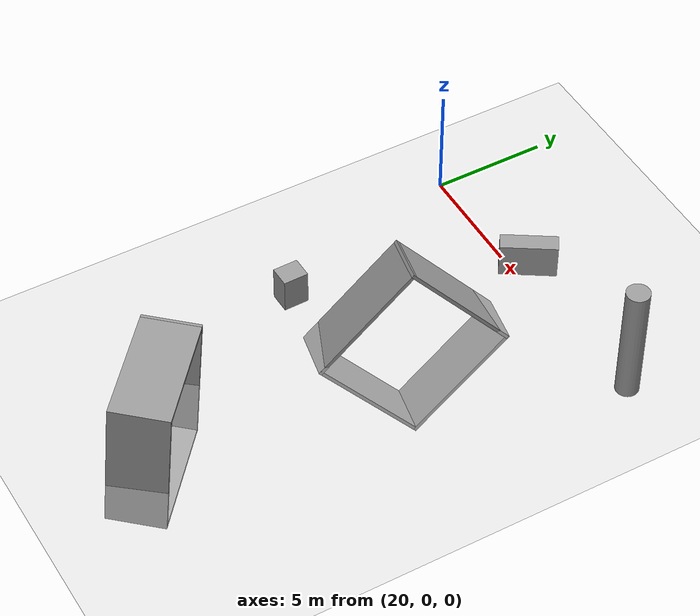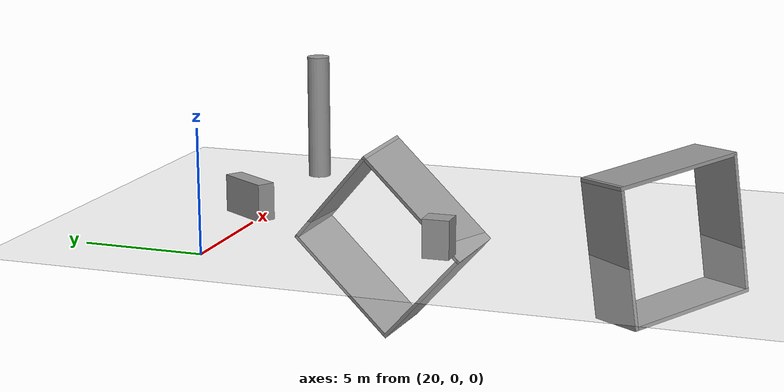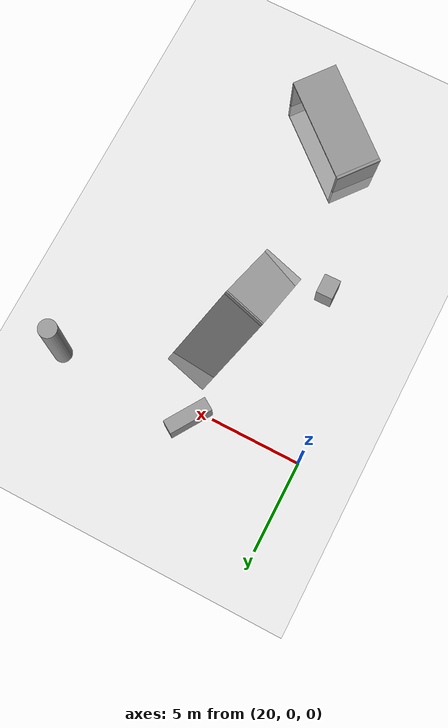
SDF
<sdf version="1.6">
 <world name="default">
  <model name="ground_plane">
   <static>1</static>
   <link name="link">
    <collision name="collision">
     <geometry><plane><normal>0 0 1</normal><size>100 100</size></plane></geometry>
     <surface><friction><ode><mu>100</mu><mu2>50</mu2></ode></friction></surface>
    </collision>
    <visual name="visual">
     <cast_shadows>0</cast_shadows>
     <geometry><plane><normal>0 0 1</normal><size>100 100</size></plane></geometry>
     <material>
      <script><uri>file://media/materials/scripts/gazebo.material</uri><name>Gazebo/Grey</name></script>
     </material>
    </visual>
   </link>
  </model>
  <model name="unit_box_clone_clone">
   <pose>26.0956 0.593964 0.788231 4e-06 -0 -0.569843</pose>
   <link name="link">
    <inertial>
     <mass>1</mass>
     <inertia>
      <ixx>0.166667</ixx>
      <ixy>0</ixy>
      <ixz>0</ixz>
      <iyy>0.166667</iyy>
      <iyz>0</iyz>
      <izz>0.166667</izz>
     </inertia>
    </inertial>
    <collision name="collision"><geometry><box><size>0.770315 2.44518 1.57647</size></box></geometry></collision>
    <visual name="visual">
     <geometry><box><size>0.770315 2.44518 1.57647</size></box></geometry>
     <material>
      <script><name>Gazebo/Grey</name><uri>file://media/materials/scripts/gazebo.material</uri></script>
     </material>
    </visual>
   </link>
  </model>
  <model name="unit_box_clone_clone_0">
   <pose>22.7246 -8.85656 0.788231 6e-06 -1e-06 0.019044</pose>
   <link name="link">
    <inertial>
     <mass>1</mass>
     <inertia>
      <ixx>0.166667</ixx>
      <ixy>0</ixy>
      <ixz>0</ixz>
      <iyy>0.166667</iyy>
      <iyz>0</iyz>
      <izz>0.166667</izz>
     </inertia>
    </inertial>
    <collision name="collision"><geometry><box><size>0.926366 1.10204 1.57647</size></box></geometry></collision>
    <visual name="visual">
     <geometry><box><size>0.926366 1.10204 1.57647</size></box></geometry>
     <material>
      <script><name>Gazebo/Grey</name><uri>file://media/materials/scripts/gazebo.material</uri></script>
     </material>
    </visual>
   </link>
  </model>
  <model name="vRoom_clone_3_clone_clone_9_clone_0">
   <link name="Wall_0">
    <pose>-2.8 -0 -1e-06 -0 -0 -1.5708</pose>
    <velocity_decay><linear>0</linear><angular>0</angular></velocity_decay>
    <visual name="Wall_0_Visual">
     <pose>0 0 1.25 0 -0 0</pose>
     <geometry><box><size>5.75 0.15 2.5</size></box></geometry>
     <material>
      <script><uri>file://media/materials/scripts/gazebo.material</uri><name>Gazebo/Grey</name></script>
      <ambient>1 1 1 1</ambient>
     </material>
    </visual>
    <collision name="Wall_0_Collision">
     <pose>0 0 1.25 0 -0 0</pose>
     <geometry><box><size>5.75 0.15 2.5</size></box></geometry>
     <surface>
      <friction>
       <ode><mu>1</mu><mu2>1</mu2><fdir1>0 0 0</fdir1><slip1>0</slip1><slip2>0</slip2></ode>
       <torsional>
        <coefficient>1</coefficient>
        <patch_radius>0</patch_radius>
        <surface_radius>0</surface_radius>
        <use_patch_radius>1</use_patch_radius>
        <ode><slip>0</slip></ode>
       </torsional>
      </friction>
      <bounce><restitution_coefficient>0</restitution_coefficient><threshold>1e+06</threshold></bounce>
      <contact>
       <collide_without_contact>0</collide_without_contact>
       <collide_without_contact_bitmask>1</collide_without_contact_bitmask>
       <collide_bitmask>1</collide_bitmask>
       <ode>
        <soft_cfm>0</soft_cfm>
        <soft_erp>0.2</soft_erp>
        <kp>1e+13</kp>
        <kd>1</kd>
        <max_vel>0.01</max_vel>
        <min_depth>0</min_depth>
       </ode>
       <bullet>
        <split_impulse>1</split_impulse>
        <split_impulse_penetration_threshold>-0.01</split_impulse_penetration_threshold>
        <soft_cfm>0</soft_cfm>
        <soft_erp>0.2</soft_erp>
        <kp>1e+13</kp>
        <kd>1</kd>
       </bullet>
      </contact>
     </surface>
    </collision>
   </link>
   <link name="Wall_1">
    <pose>2e-06 -2.8 2e-06 0 -0 0</pose>
    <velocity_decay><linear>0</linear><angular>0</angular></velocity_decay>
    <visual name="Wall_1_Visual">
     <pose>0 0 1.25 0 -0 0</pose>
     <geometry><box><size>5.75 0.15 2.5</size></box></geometry>
     <material>
      <script><uri>file://media/materials/scripts/gazebo.material</uri><name>Gazebo/Grey</name></script>
      <ambient>1 1 1 1</ambient>
     </material>
    </visual>
    <collision name="Wall_1_Collision">
     <pose>0 0 1.25 0 -0 0</pose>
     <geometry><box><size>5.75 0.15 2.5</size></box></geometry>
     <surface>
      <friction>
       <ode><mu>1</mu><mu2>1</mu2><fdir1>0 0 0</fdir1><slip1>0</slip1><slip2>0</slip2></ode>
       <torsional>
        <coefficient>1</coefficient>
        <patch_radius>0</patch_radius>
        <surface_radius>0</surface_radius>
        <use_patch_radius>1</use_patch_radius>
        <ode><slip>0</slip></ode>
       </torsional>
      </friction>
      <bounce><restitution_coefficient>0</restitution_coefficient><threshold>1e+06</threshold></bounce>
      <contact>
       <collide_without_contact>0</collide_without_contact>
       <collide_without_contact_bitmask>1</collide_without_contact_bitmask>
       <collide_bitmask>1</collide_bitmask>
       <ode>
        <soft_cfm>0</soft_cfm>
        <soft_erp>0.2</soft_erp>
        <kp>1e+13</kp>
        <kd>1</kd>
        <max_vel>0.01</max_vel>
        <min_depth>0</min_depth>
       </ode>
       <bullet>
        <split_impulse>1</split_impulse>
        <split_impulse_penetration_threshold>-0.01</split_impulse_penetration_threshold>
        <soft_cfm>0</soft_cfm>
        <soft_erp>0.2</soft_erp>
        <kp>1e+13</kp>
        <kd>1</kd>
       </bullet>
      </contact>
     </surface>
    </collision>
   </link>
   <link name="Wall_2">
    <pose>2.8 0 1e-06 0 -0 1.5708</pose>
    <velocity_decay><linear>0</linear><angular>0</angular></velocity_decay>
    <visual name="Wall_2_Visual">
     <pose>0 0 1.25 0 -0 0</pose>
     <geometry><box><size>5.75 0.15 2.5</size></box></geometry>
     <material>
      <script><uri>file://media/materials/scripts/gazebo.material</uri><name>Gazebo/Grey</name></script>
      <ambient>1 1 1 1</ambient>
     </material>
    </visual>
    <collision name="Wall_2_Collision">
     <pose>0 0 1.25 0 -0 0</pose>
     <geometry><box><size>5.75 0.15 2.5</size></box></geometry>
     <surface>
      <friction>
       <ode><mu>1</mu><mu2>1</mu2><fdir1>0 0 0</fdir1><slip1>0</slip1><slip2>0</slip2></ode>
       <torsional>
        <coefficient>1</coefficient>
        <patch_radius>0</patch_radius>
        <surface_radius>0</surface_radius>
        <use_patch_radius>1</use_patch_radius>
        <ode><slip>0</slip></ode>
       </torsional>
      </friction>
      <bounce><restitution_coefficient>0</restitution_coefficient><threshold>1e+06</threshold></bounce>
      <contact>
       <collide_without_contact>0</collide_without_contact>
       <collide_without_contact_bitmask>1</collide_without_contact_bitmask>
       <collide_bitmask>1</collide_bitmask>
       <ode>
        <soft_cfm>0</soft_cfm>
        <soft_erp>0.2</soft_erp>
        <kp>1e+13</kp>
        <kd>1</kd>
        <max_vel>0.01</max_vel>
        <min_depth>0</min_depth>
       </ode>
       <bullet>
        <split_impulse>1</split_impulse>
        <split_impulse_penetration_threshold>-0.01</split_impulse_penetration_threshold>
        <soft_cfm>0</soft_cfm>
        <soft_erp>0.2</soft_erp>
        <kp>1e+13</kp>
        <kd>1</kd>
       </bullet>
      </contact>
     </surface>
    </collision>
   </link>
   <link name="Wall_3">
    <pose>-2e-06 2.8 -2e-06 0 -0 3.14159</pose>
    <velocity_decay><linear>0</linear><angular>0</angular></velocity_decay>
    <visual name="Wall_3_Visual">
     <pose>0 0 1.25 0 -0 0</pose>
     <geometry><box><size>5.75 0.15 2.5</size></box></geometry>
     <material>
      <script><uri>file://media/materials/scripts/gazebo.material</uri><name>Gazebo/Grey</name></script>
      <ambient>1 1 1 1</ambient>
     </material>
    </visual>
    <collision name="Wall_3_Collision">
     <pose>0 0 1.25 0 -0 0</pose>
     <geometry><box><size>5.75 0.15 2.5</size></box></geometry>
     <surface>
      <friction>
       <ode><mu>1</mu><mu2>1</mu2><fdir1>0 0 0</fdir1><slip1>0</slip1><slip2>0</slip2></ode>
       <torsional>
        <coefficient>1</coefficient>
        <patch_radius>0</patch_radius>
        <surface_radius>0</surface_radius>
        <use_patch_radius>1</use_patch_radius>
        <ode><slip>0</slip></ode>
       </torsional>
      </friction>
      <bounce><restitution_coefficient>0</restitution_coefficient><threshold>1e+06</threshold></bounce>
      <contact>
       <collide_without_contact>0</collide_without_contact>
       <collide_without_contact_bitmask>1</collide_without_contact_bitmask>
       <collide_bitmask>1</collide_bitmask>
       <ode>
        <soft_cfm>0</soft_cfm>
        <soft_erp>0.2</soft_erp>
        <kp>1e+13</kp>
        <kd>1</kd>
        <max_vel>0.01</max_vel>
        <min_depth>0</min_depth>
       </ode>
       <bullet>
        <split_impulse>1</split_impulse>
        <split_impulse_penetration_threshold>-0.01</split_impulse_penetration_threshold>
        <soft_cfm>0</soft_cfm>
        <soft_erp>0.2</soft_erp>
        <kp>1e+13</kp>
        <kd>1</kd>
       </bullet>
      </contact>
     </surface>
    </collision>
   </link>
   <static>1</static>
   <pose>27.2029 -16.0391 0.534522 -1.11103 -1.4406 1.99895</pose>
  </model>
  <model name="vRoom_clone_3_clone_clone_9_clone_2">
   <link name="Wall_0">
    <pose>-2.8 -0 -1e-06 -0 -0 -1.5708</pose>
    <velocity_decay><linear>0</linear><angular>0</angular></velocity_decay>
    <visual name="Wall_0_Visual">
     <pose>0 0 1.25 0 -0 0</pose>
     <geometry><box><size>5.75 0.15 2.5</size></box></geometry>
     <material>
      <script><uri>file://media/materials/scripts/gazebo.material</uri><name>Gazebo/Grey</name></script>
      <ambient>1 1 1 1</ambient>
     </material>
    </visual>
    <collision name="Wall_0_Collision">
     <pose>0 0 1.25 0 -0 0</pose>
     <geometry><box><size>5.75 0.15 2.5</size></box></geometry>
     <surface>
      <friction>
       <ode><mu>1</mu><mu2>1</mu2><fdir1>0 0 0</fdir1><slip1>0</slip1><slip2>0</slip2></ode>
       <torsional>
        <coefficient>1</coefficient>
        <patch_radius>0</patch_radius>
        <surface_radius>0</surface_radius>
        <use_patch_radius>1</use_patch_radius>
        <ode><slip>0</slip></ode>
       </torsional>
      </friction>
      <bounce><restitution_coefficient>0</restitution_coefficient><threshold>1e+06</threshold></bounce>
      <contact>
       <collide_without_contact>0</collide_without_contact>
       <collide_without_contact_bitmask>1</collide_without_contact_bitmask>
       <collide_bitmask>1</collide_bitmask>
       <ode>
        <soft_cfm>0</soft_cfm>
        <soft_erp>0.2</soft_erp>
        <kp>1e+13</kp>
        <kd>1</kd>
        <max_vel>0.01</max_vel>
        <min_depth>0</min_depth>
       </ode>
       <bullet>
        <split_impulse>1</split_impulse>
        <split_impulse_penetration_threshold>-0.01</split_impulse_penetration_threshold>
        <soft_cfm>0</soft_cfm>
        <soft_erp>0.2</soft_erp>
        <kp>1e+13</kp>
        <kd>1</kd>
       </bullet>
      </contact>
     </surface>
    </collision>
   </link>
   <link name="Wall_1">
    <pose>2e-06 -2.8 2e-06 0 -0 0</pose>
    <velocity_decay><linear>0</linear><angular>0</angular></velocity_decay>
    <visual name="Wall_1_Visual">
     <pose>0 0 1.25 0 -0 0</pose>
     <geometry><box><size>5.75 0.15 2.5</size></box></geometry>
     <material>
      <script><uri>file://media/materials/scripts/gazebo.material</uri><name>Gazebo/Grey</name></script>
      <ambient>1 1 1 1</ambient>
     </material>
    </visual>
    <collision name="Wall_1_Collision">
     <pose>0 0 1.25 0 -0 0</pose>
     <geometry><box><size>5.75 0.15 2.5</size></box></geometry>
     <surface>
      <friction>
       <ode><mu>1</mu><mu2>1</mu2><fdir1>0 0 0</fdir1><slip1>0</slip1><slip2>0</slip2></ode>
       <torsional>
        <coefficient>1</coefficient>
        <patch_radius>0</patch_radius>
        <surface_radius>0</surface_radius>
        <use_patch_radius>1</use_patch_radius>
        <ode><slip>0</slip></ode>
       </torsional>
      </friction>
      <bounce><restitution_coefficient>0</restitution_coefficient><threshold>1e+06</threshold></bounce>
      <contact>
       <collide_without_contact>0</collide_without_contact>
       <collide_without_contact_bitmask>1</collide_without_contact_bitmask>
       <collide_bitmask>1</collide_bitmask>
       <ode>
        <soft_cfm>0</soft_cfm>
        <soft_erp>0.2</soft_erp>
        <kp>1e+13</kp>
        <kd>1</kd>
        <max_vel>0.01</max_vel>
        <min_depth>0</min_depth>
       </ode>
       <bullet>
        <split_impulse>1</split_impulse>
        <split_impulse_penetration_threshold>-0.01</split_impulse_penetration_threshold>
        <soft_cfm>0</soft_cfm>
        <soft_erp>0.2</soft_erp>
        <kp>1e+13</kp>
        <kd>1</kd>
       </bullet>
      </contact>
     </surface>
    </collision>
   </link>
   <link name="Wall_2">
    <pose>2.8 0 1e-06 0 -0 1.5708</pose>
    <velocity_decay><linear>0</linear><angular>0</angular></velocity_decay>
    <visual name="Wall_2_Visual">
     <pose>0 0 1.25 0 -0 0</pose>
     <geometry><box><size>5.75 0.15 2.5</size></box></geometry>
     <material>
      <script><uri>file://media/materials/scripts/gazebo.material</uri><name>Gazebo/Grey</name></script>
      <ambient>1 1 1 1</ambient>
     </material>
    </visual>
    <collision name="Wall_2_Collision">
     <pose>0 0 1.25 0 -0 0</pose>
     <geometry><box><size>5.75 0.15 2.5</size></box></geometry>
     <surface>
      <friction>
       <ode><mu>1</mu><mu2>1</mu2><fdir1>0 0 0</fdir1><slip1>0</slip1><slip2>0</slip2></ode>
       <torsional>
        <coefficient>1</coefficient>
        <patch_radius>0</patch_radius>
        <surface_radius>0</surface_radius>
        <use_patch_radius>1</use_patch_radius>
        <ode><slip>0</slip></ode>
       </torsional>
      </friction>
      <bounce><restitution_coefficient>0</restitution_coefficient><threshold>1e+06</threshold></bounce>
      <contact>
       <collide_without_contact>0</collide_without_contact>
       <collide_without_contact_bitmask>1</collide_without_contact_bitmask>
       <collide_bitmask>1</collide_bitmask>
       <ode>
        <soft_cfm>0</soft_cfm>
        <soft_erp>0.2</soft_erp>
        <kp>1e+13</kp>
        <kd>1</kd>
        <max_vel>0.01</max_vel>
        <min_depth>0</min_depth>
       </ode>
       <bullet>
        <split_impulse>1</split_impulse>
        <split_impulse_penetration_threshold>-0.01</split_impulse_penetration_threshold>
        <soft_cfm>0</soft_cfm>
        <soft_erp>0.2</soft_erp>
        <kp>1e+13</kp>
        <kd>1</kd>
       </bullet>
      </contact>
     </surface>
    </collision>
   </link>
   <link name="Wall_3">
    <pose>-2e-06 2.8 -2e-06 0 -0 3.14159</pose>
    <velocity_decay><linear>0</linear><angular>0</angular></velocity_decay>
    <visual name="Wall_3_Visual">
     <pose>0 0 1.25 0 -0 0</pose>
     <geometry><box><size>5.75 0.15 2.5</size></box></geometry>
     <material>
      <script><uri>file://media/materials/scripts/gazebo.material</uri><name>Gazebo/Grey</name></script>
      <ambient>1 1 1 1</ambient>
     </material>
    </visual>
    <collision name="Wall_3_Collision">
     <pose>0 0 1.25 0 -0 0</pose>
     <geometry><box><size>5.75 0.15 2.5</size></box></geometry>
     <surface>
      <friction>
       <ode><mu>1</mu><mu2>1</mu2><fdir1>0 0 0</fdir1><slip1>0</slip1><slip2>0</slip2></ode>
       <torsional>
        <coefficient>1</coefficient>
        <patch_radius>0</patch_radius>
        <surface_radius>0</surface_radius>
        <use_patch_radius>1</use_patch_radius>
        <ode><slip>0</slip></ode>
       </torsional>
      </friction>
      <bounce><restitution_coefficient>0</restitution_coefficient><threshold>1e+06</threshold></bounce>
      <contact>
       <collide_without_contact>0</collide_without_contact>
       <collide_without_contact_bitmask>1</collide_without_contact_bitmask>
       <collide_bitmask>1</collide_bitmask>
       <ode>
        <soft_cfm>0</soft_cfm>
        <soft_erp>0.2</soft_erp>
        <kp>1e+13</kp>
        <kd>1</kd>
        <max_vel>0.01</max_vel>
        <min_depth>0</min_depth>
       </ode>
       <bullet>
        <split_impulse>1</split_impulse>
        <split_impulse_penetration_threshold>-0.01</split_impulse_penetration_threshold>
        <soft_cfm>0</soft_cfm>
        <soft_erp>0.2</soft_erp>
        <kp>1e+13</kp>
        <kd>1</kd>
       </bullet>
      </contact>
     </surface>
    </collision>
   </link>
   <static>1</static>
   <pose>27.7206 -5.8322 -0.34899 1.8013 -0.792215 -1.97465</pose>
  </model>
  <model name="unit_cylinder_clone_7_clone_1_clone">
   <pose>33.6879 0.497329 2.75253 0 -0 0.001972</pose>
   <link name="link">
    <inertial>
     <mass>1</mass>
     <inertia><ixx>0.145833</ixx><ixy>0</ixy><ixz>0</ixz><iyy>0.145833</iyy><iyz>0</iyz><izz>0.125</izz></inertia>
    </inertial>
    <collision name="collision">
     <geometry><cylinder><radius>0.5</radius><length>5.50507</length></cylinder></geometry>
    </collision>
    <visual name="visual">
     <geometry><cylinder><radius>0.5</radius><length>5.50507</length></cylinder></geometry>
     <material>
      <script><name>Gazebo/Grey</name><uri>file://media/materials/scripts/gazebo.material</uri></script>
     </material>
    </visual>
   </link>
  </model>
 </world>
</sdf>
